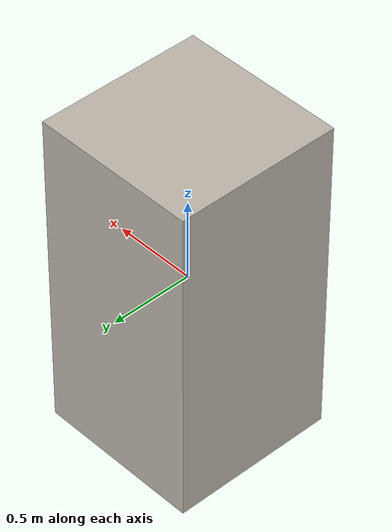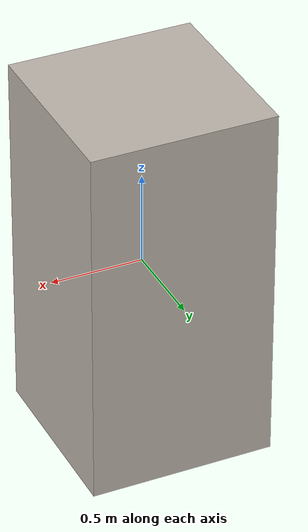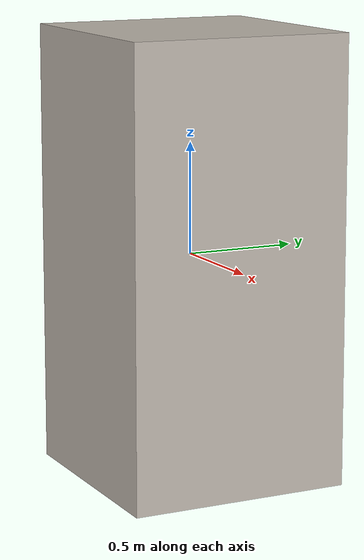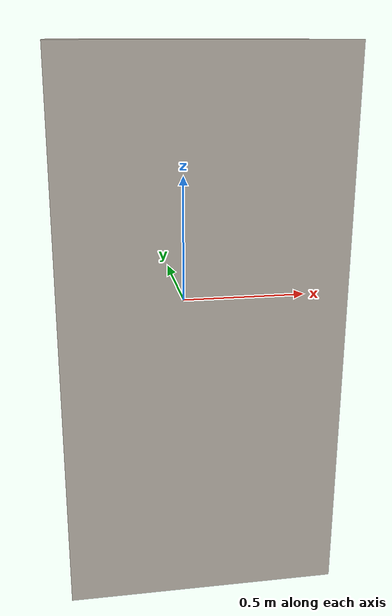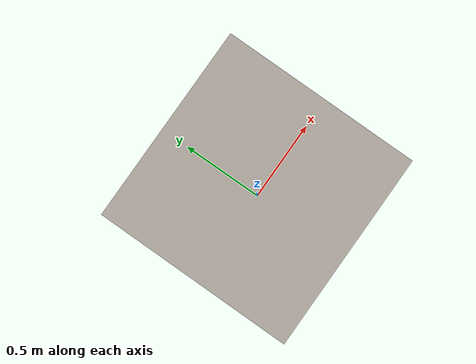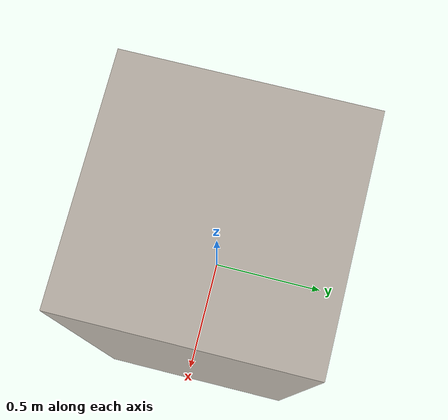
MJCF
<mujoco model="counter">
  <asset>
    <texture file="visuals/marble.png" type="2d" name="tex_top_2d"/>
    <texture file="visuals/marble.png" type="cube" name="tex_base"/>
    <material name="counter_top" reflectance="0.1" shininess="0.1" texrepeat="3 3" texuniform="true" texture="tex_top_2d"/>
    <material name="counter_base" reflectance="0.1" shininess="0.1" texture="tex_base"/>
  </asset>
  <default>
    <default class="counter">
      <geom group="0" density="10"/>
    </default>
    <default class="region">
      <geom group="1" conaffinity="0" contype="0" rgba="0 1 0 0"/>
    </default>
  </default>
  <worldbody>
    <body>
      <body name="object">
        <!-- All sizes and positions are programatically generated -->
        <geom pos="0.0 0 0" size="0.50 0.50 1.0" type="box" material="counter_base" name="base_right" class="counter"/>
        <geom pos="0.0 0 0" size="0.50 0.50 1.0" type="box" material="counter_base" name="base_left" class="counter"/>
        <geom pos="0.0 0 0" size="0.50 0.50 1.0" type="box" material="counter_base" name="base_back" class="counter"/>
        <geom pos="0.0 0 0" size="0.50 0.50 1.0" type="box" material="counter_base" name="base_front" class="counter"/>
        <!-- exterior bounding box points -->
        <geom class="region" name="reg_main" type="box" pos="0.0 0.0 0.0" size="0.0001 0.0001 0.0001"/>
        <!-- interior bounding box points -->
        <geom class="region" name="reg_int" type="box" pos="0.0 0.0 0.0" size="0.0001 0.0001 0.0001"/>
      </body>
    </body>
  </worldbody>
</mujoco>
